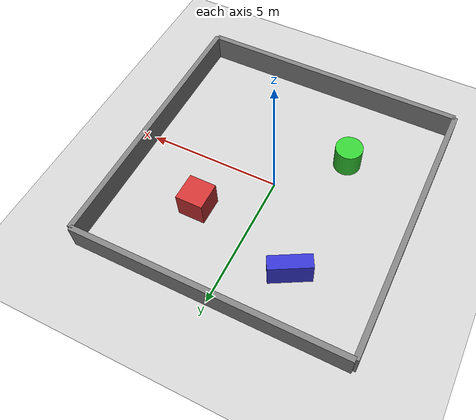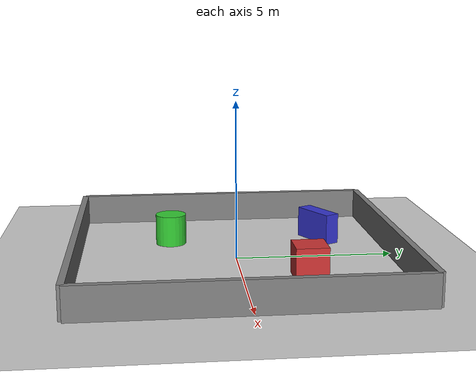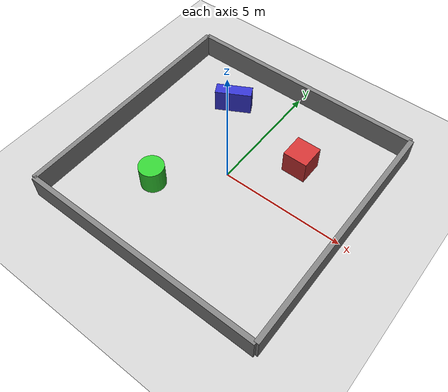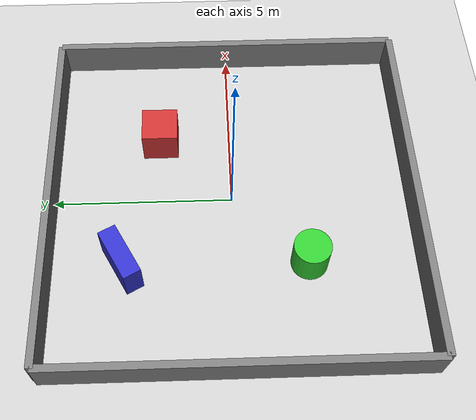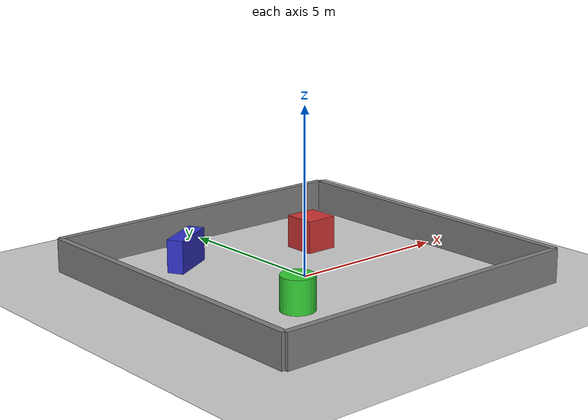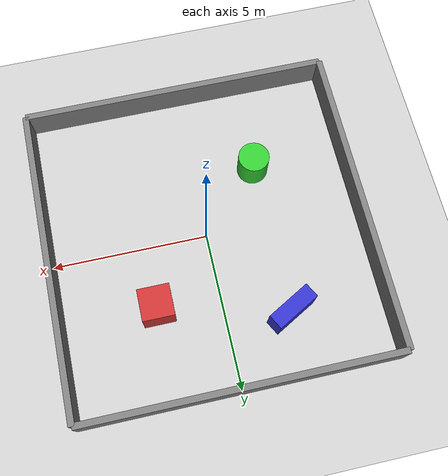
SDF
<?xml version="1.0"?>
<sdf version="1.8">
  <world name="explorer_world">

    <!-- Core systems required for Gazebo Harmonic + ros_gz -->
    <plugin filename="gz-sim-physics-system" name="gz::sim::systems::Physics"/>
    <plugin filename="gz-sim-user-commands-system" name="gz::sim::systems::UserCommands"/>
    <plugin filename="gz-sim-scene-broadcaster-system" name="gz::sim::systems::SceneBroadcaster"/>
    <plugin filename="gz-sim-sensors-system" name="gz::sim::systems::Sensors">
      <render_engine>ogre2</render_engine>
    </plugin>
    <plugin filename="gz-sim-imu-system" name="gz::sim::systems::Imu"/>

    <physics name="1ms" type="ignored">
      <max_step_size>0.001</max_step_size>
      <real_time_factor>1.0</real_time_factor>
    </physics>

    <scene>
      <ambient>0.4 0.4 0.4 1</ambient>
      <background>0.7 0.7 0.7 1</background>
      <shadows>true</shadows>
    </scene>

    <light type="directional" name="sun">
      <cast_shadows>true</cast_shadows>
      <pose>0 0 10 0 0 0</pose>
      <diffuse>0.9 0.9 0.9 1</diffuse>
      <specular>0.2 0.2 0.2 1</specular>
      <direction>-0.5 0.1 -0.9</direction>
    </light>

    <model name="ground_plane">
      <static>true</static>
      <link name="link">
        <collision name="collision">
          <geometry><plane><normal>0 0 1</normal><size>20 20</size></plane></geometry>
        </collision>
        <visual name="visual">
          <geometry><plane><normal>0 0 1</normal><size>20 20</size></plane></geometry>
          <material><ambient>0.8 0.8 0.8 1</ambient><diffuse>0.8 0.8 0.8 1</diffuse></material>
        </visual>
      </link>
    </model>

    <!-- Walls -->
    <model name="wall_north">
      <static>true</static>
      <pose>0 5 0.5 0 0 0</pose>
      <link name="link">
        <collision name="collision">
          <geometry><box><size>10 0.2 1</size></box></geometry>
        </collision>
        <visual name="visual">
          <geometry><box><size>10 0.2 1</size></box></geometry>
          <material><ambient>0.5 0.5 0.5 1</ambient><diffuse>0.5 0.5 0.5 1</diffuse></material>
        </visual>
      </link>
    </model>

    <model name="wall_south">
      <static>true</static>
      <pose>0 -5 0.5 0 0 0</pose>
      <link name="link">
        <collision name="collision">
          <geometry><box><size>10 0.2 1</size></box></geometry>
        </collision>
        <visual name="visual">
          <geometry><box><size>10 0.2 1</size></box></geometry>
          <material><ambient>0.5 0.5 0.5 1</ambient><diffuse>0.5 0.5 0.5 1</diffuse></material>
        </visual>
      </link>
    </model>

    <model name="wall_east">
      <static>true</static>
      <pose>5 0 0.5 0 0 1.5708</pose>
      <link name="link">
        <collision name="collision">
          <geometry><box><size>10 0.2 1</size></box></geometry>
        </collision>
        <visual name="visual">
          <geometry><box><size>10 0.2 1</size></box></geometry>
          <material><ambient>0.5 0.5 0.5 1</ambient><diffuse>0.5 0.5 0.5 1</diffuse></material>
        </visual>
      </link>
    </model>

    <model name="wall_west">
      <static>true</static>
      <pose>-5 0 0.5 0 0 1.5708</pose>
      <link name="link">
        <collision name="collision">
          <geometry><box><size>10 0.2 1</size></box></geometry>
        </collision>
        <visual name="visual">
          <geometry><box><size>10 0.2 1</size></box></geometry>
          <material><ambient>0.5 0.5 0.5 1</ambient><diffuse>0.5 0.5 0.5 1</diffuse></material>
        </visual>
      </link>
    </model>

    <!-- Obstacles -->
    <model name="box1">
      <static>true</static>
      <pose>2 2 0.5 0 0 0</pose>
      <link name="link">
        <collision name="collision">
          <geometry><box><size>1 1 1</size></box></geometry>
        </collision>
        <visual name="visual">
          <geometry><box><size>1 1 1</size></box></geometry>
          <material><ambient>0.8 0.2 0.2 1</ambient><diffuse>0.8 0.2 0.2 1</diffuse></material>
        </visual>
      </link>
    </model>

    <model name="cylinder1">
      <static>true</static>
      <pose>-2 -2 0.5 0 0 0</pose>
      <link name="link">
        <collision name="collision">
          <geometry><cylinder><radius>0.5</radius><length>1</length></cylinder></geometry>
        </collision>
        <visual name="visual">
          <geometry><cylinder><radius>0.5</radius><length>1</length></cylinder></geometry>
          <material><ambient>0.2 0.8 0.2 1</ambient><diffuse>0.2 0.8 0.2 1</diffuse></material>
        </visual>
      </link>
    </model>

    <model name="box2">
      <static>true</static>
      <pose>-2 3 0.5 0 0 0.5</pose>
      <link name="link">
        <collision name="collision">
          <geometry><box><size>1.5 0.5 1</size></box></geometry>
        </collision>
        <visual name="visual">
          <geometry><box><size>1.5 0.5 1</size></box></geometry>
          <material><ambient>0.2 0.2 0.8 1</ambient><diffuse>0.2 0.2 0.8 1</diffuse></material>
        </visual>
      </link>
    </model>
  </world>
</sdf>
